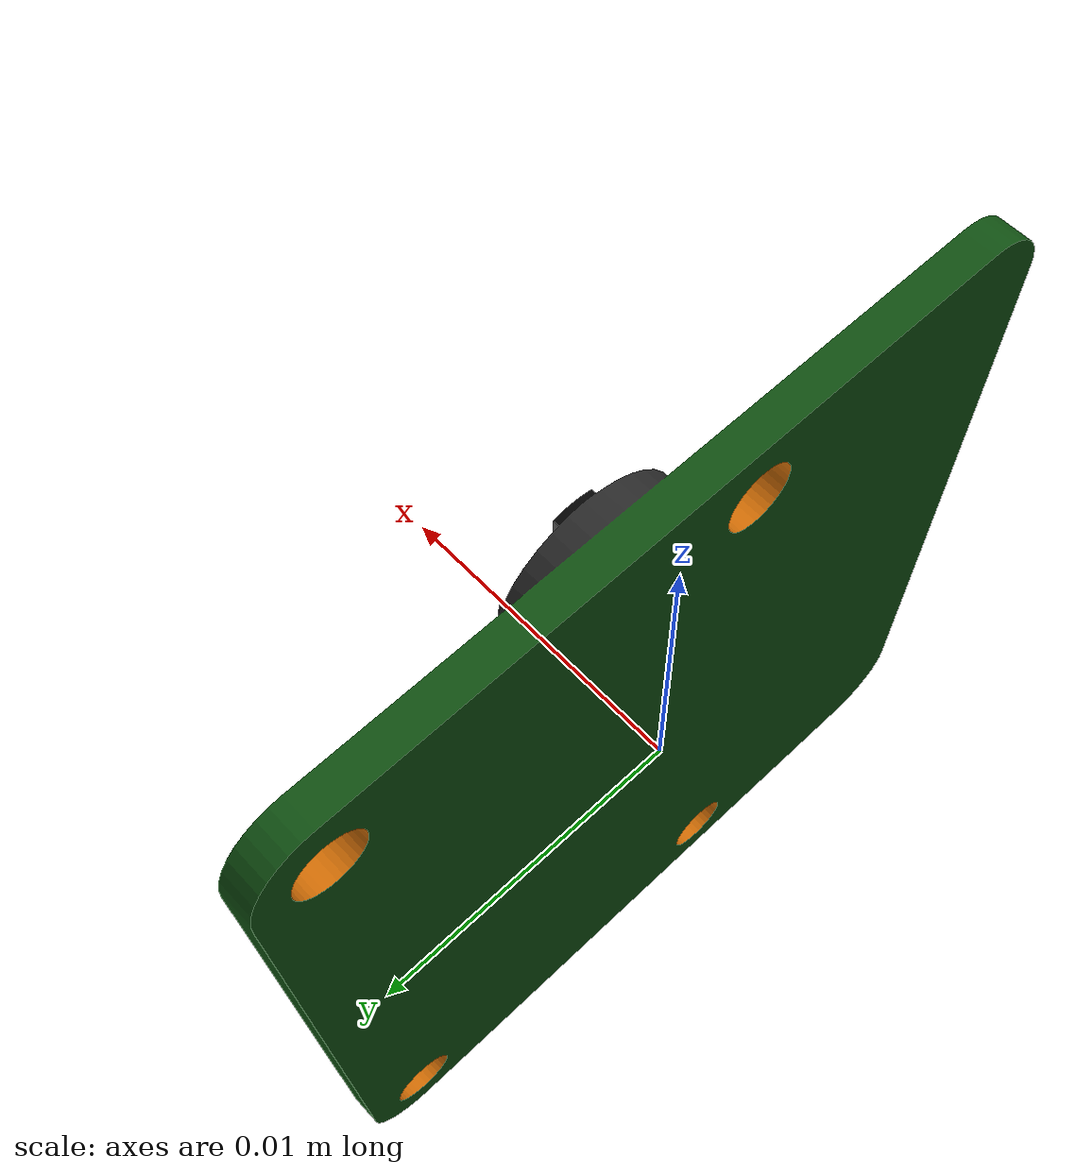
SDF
<?xml version="1.0" ?>
<sdf version="1.6">
  <model name="pi_cam">
    <link name="link">
      <pose>0 0 0 0 0 0</pose>
      <inertial>
        <pose>0 0 0 0 0 0</pose>
        <mass>0.003</mass>
        <inertia>
          <ixx>1e-05</ixx>
          <ixy>0</ixy>
          <ixz>0</ixz>
          <iyy>1e-05</iyy>
          <iyz>0</iyz>
          <izz>1e-05</izz>
        </inertia>
      </inertial>
      <visual name="pi_cam_visual">
        <pose>0 0 0 -1.5708 0 -1.5708</pose>
        <geometry>
          <mesh>
            <scale>1 1 1</scale>
            <uri>file://tarot_680/components/pi_cam/meshes/pi_cam.dae</uri>
          </mesh>
        </geometry>
      </visual>
      <collision name="pi_cam_collison">
        <pose>0 0 0 0 0 0</pose>
        <geometry>
          <box>
            <size>0.025 0.025 0.007</size>
          </box>
        </geometry>
      </collision>
      <sensor name='camera' type='camera'>
          <camera name='__default__'>
            <horizontal_fov>1.085595</horizontal_fov>
            <image>
              <width>320</width>
              <height>240</height>
            </image>
            <clip>
              <near>0.1</near>
              <far>100</far>
            </clip>
            <lens>
              <type>custom</type>
              <custom_function>
                <c1>1.05</c1>
                <c2>4</c2>
                <f>1</f>
                <fun>tan</fun>
              </custom_function>
              <scale_to_hfov>1</scale_to_hfov>
              <cutoff_angle>3.1415</cutoff_angle>
              <env_texture_size>1080</env_texture_size>
            </lens>
          </camera>
          <always_on>1</always_on>
          <update_rate>30</update_rate>
          <visualize>1</visualize>

          <!-- GStreamer camera plugin (needs a lot of CPU! Consider lowering the
             camera image size) -->

        </sensor>
    </link>
  </model>
</sdf>
